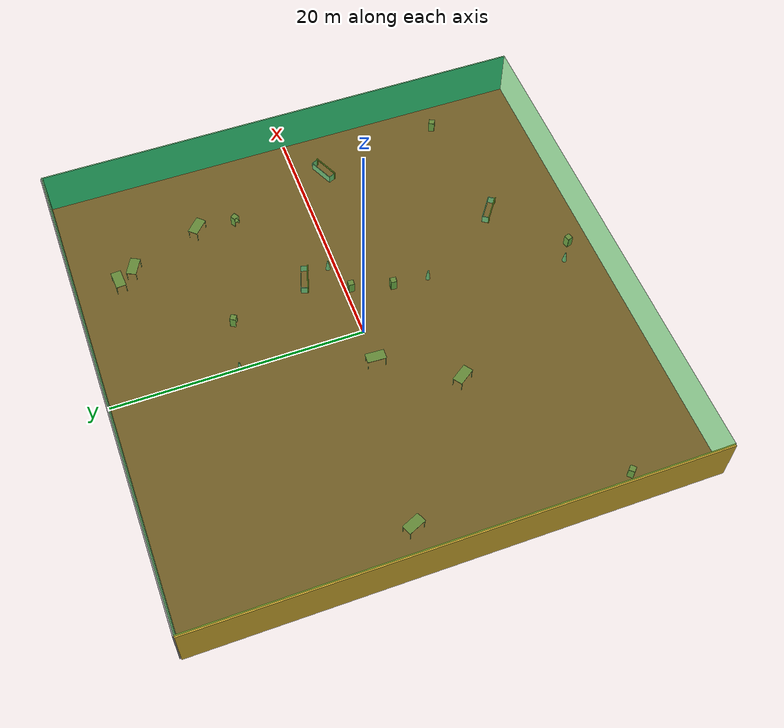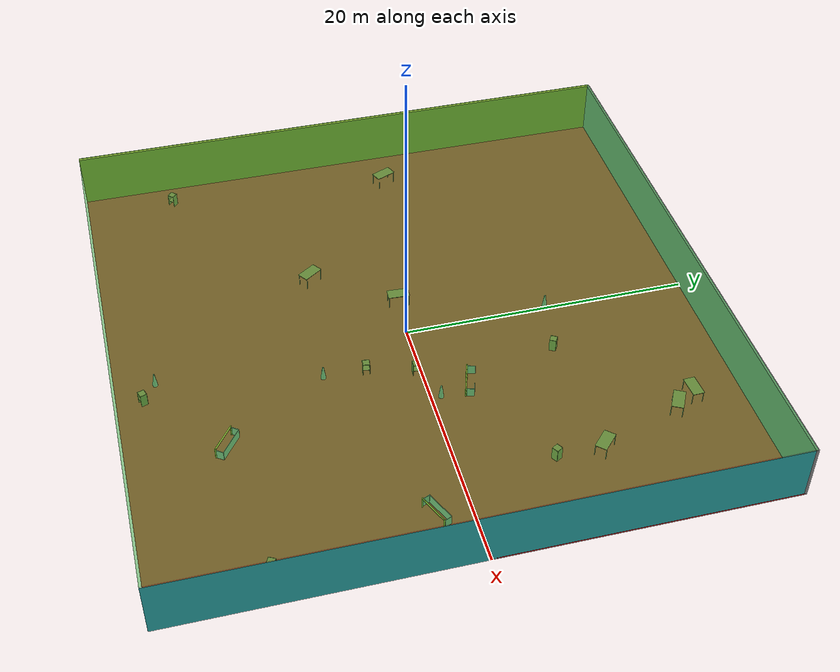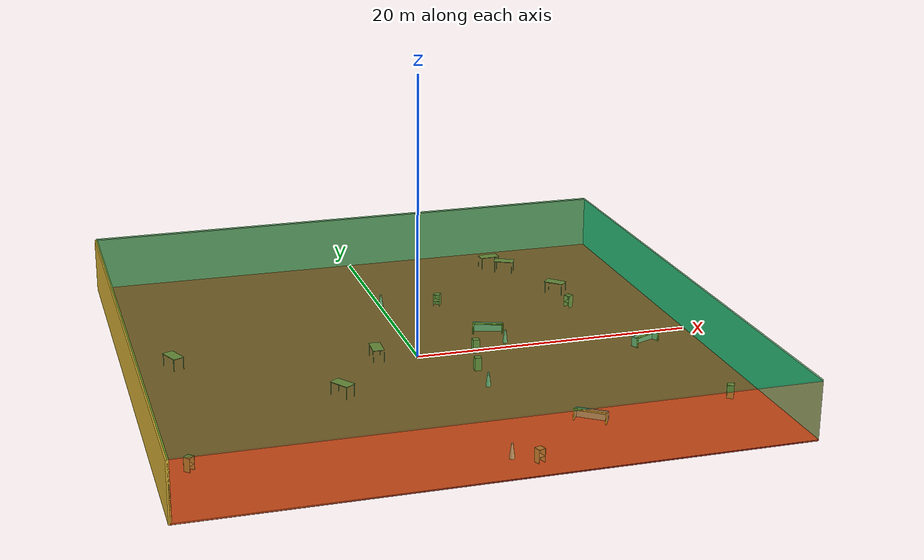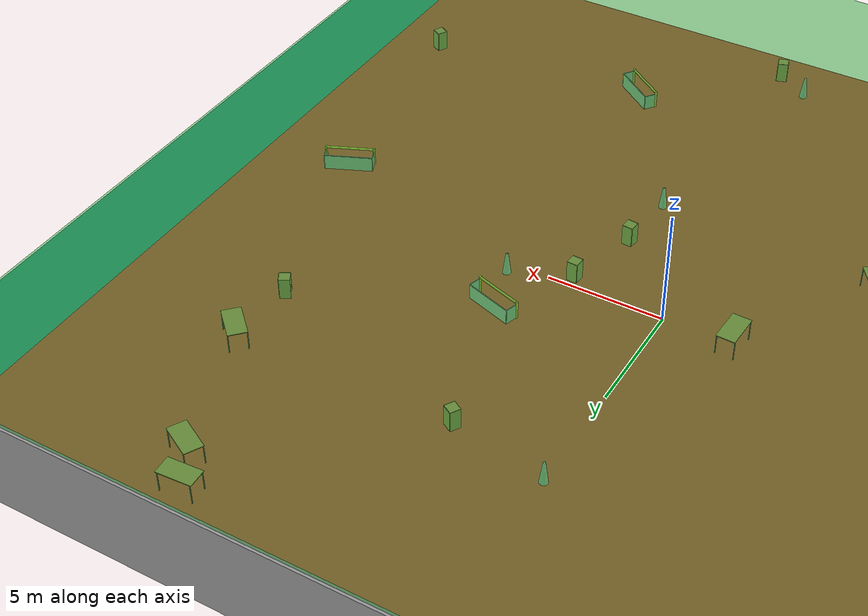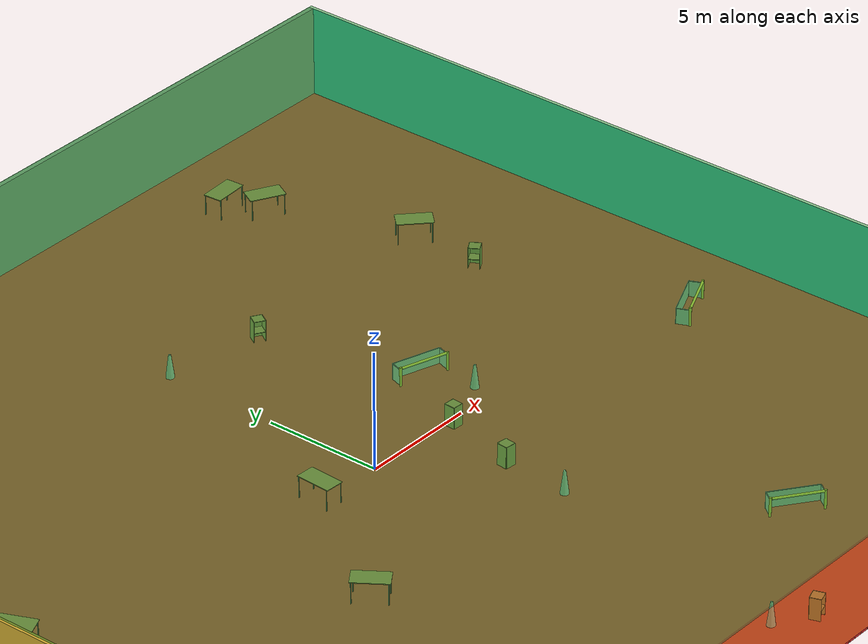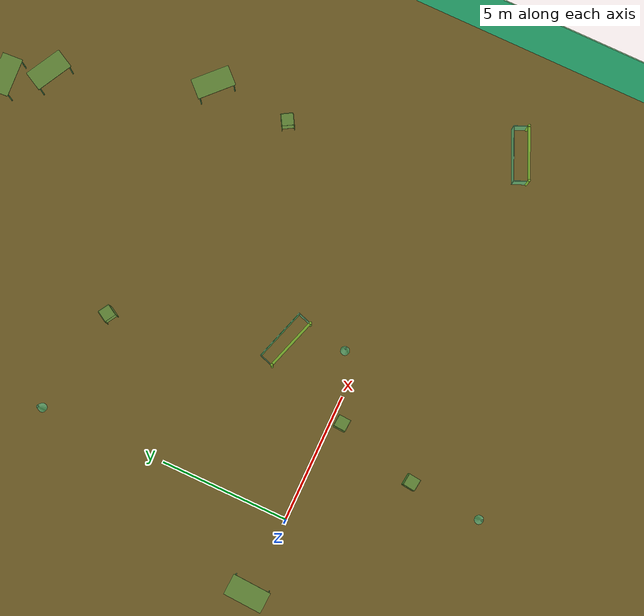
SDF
<sdf version="1.4">
 <world name="default">
  <physics type="ode">
   <max_step_size>0.001</max_step_size>
   <real_time_factor>1</real_time_factor>
   <real_time_update_rate>1000</real_time_update_rate>
   <gravity>0 0 -9.8</gravity>
  </physics>
  <scene><ambient>0.4 0.4 0.4 1</ambient><background>0.7 0.7 0.7 1</background><shadows>1</shadows></scene>
  <model name="Surrounding">
   <static>1</static>
   <link name="Ceiling">
    <collision name="Ceiling_Collision"><geometry><box><size>40 40 0.1</size></box></geometry></collision>
    <visual name="Ceiling_Visual">
     <geometry><box><size>40 40 0.1</size></box></geometry>
     <material>
      <script><uri>file://media/materials/scripts/gazebo.material</uri><name>Gazebo/GreenTransparent</name></script>
     </material>
    </visual>
    <pose>0 0 4.05 0 0 0</pose>
   </link>
   <link name="Wall_South">
    <collision name="Wall_South_Collision">
     <geometry><box><size>40 0 4</size></box></geometry>
     <pose>0 0 2 0 -0 0</pose>
    </collision>
    <visual name="Wall_South_Visual">
     <pose>0 0 2 0 -0 0</pose>
     <geometry><box><size>40 0 4</size></box></geometry>
     <material>
      <script>
       <uri>file://media/materials/scripts/gazebo.material</uri>
       <name>Gazebo/OrangeTransparent</name>
      </script>
     </material>
    </visual>
    <velocity_decay><linear>0</linear><angular>0</angular></velocity_decay>
    <pose>0 -20 0 0 -0 0</pose>
   </link>
   <link name="Wall_East">
    <collision name="Wall_21_Collision">
     <geometry><box><size>40 0 4</size></box></geometry>
     <pose>0 0 2 0 -0 0</pose>
    </collision>
    <visual name="Wall_21_Visual">
     <pose>0 0 2 0 -0 0</pose>
     <geometry><box><size>40 0 4</size></box></geometry>
     <material>
      <script><uri>file://media/materials/scripts/gazebo.material</uri><name>Gazebo/TurquoiseGlow</name></script>
     </material>
    </visual>
    <velocity_decay><linear>0</linear><angular>0</angular></velocity_decay>
    <pose>20 0 0 0 -0 1.5708</pose>
   </link>
   <link name="Wall_North">
    <collision name="Wall_22_Collision">
     <geometry><box><size>40 0.2 4</size></box></geometry>
     <pose>0 0 2 0 -0 0</pose>
    </collision>
    <visual name="Wall_22_Visual">
     <pose>0 0 2 0 -0 0</pose>
     <geometry><box><size>40 0.2 4</size></box></geometry>
     <material>
      <script><uri>file://media/materials/scripts/gazebo.material</uri><name>Gazebo/GreyGradientSky</name></script>
     </material>
    </visual>
    <velocity_decay><linear>0</linear><angular>0</angular></velocity_decay>
    <pose>0 20 0 0 -0 0</pose>
   </link>
   <link name="Wall_West">
    <collision name="Wall_23_Collision">
     <geometry><box><size>40 0.2 4</size></box></geometry>
     <pose>0 0 2 0 -0 0</pose>
    </collision>
    <visual name="Wall_23_Visual">
     <pose>0 0 2 0 -0 0</pose>
     <geometry><box><size>40 0.2 4</size></box></geometry>
     <material>
      <script><uri>file://media/materials/scripts/gazebo.material</uri><name>Gazebo/Gold</name></script>
     </material>
    </visual>
    <velocity_decay><linear>0</linear><angular>0</angular></velocity_decay>
    <pose>-20 0 0 0 0 -1.5708</pose>
   </link>
   <link name="Ground_link">
    <collision name="collision">
     <pose>0 0 .05 0 -0 0</pose>
     <geometry><box><size>40 40 0.1</size></box></geometry>
    </collision>
    <visual name="visual">
     <pose>0 0 .05 0 -0 0</pose>
     <geometry><box><size>40 40 0.1</size></box></geometry>
     <material>
      <script><uri>file://media/materials/scripts/gazebo.material</uri><name>Gazebo/Red</name></script>
     </material>
    </visual>
   </link>
   <static>1</static>
  </model>
  <spherical_coordinates>
   <surface_model>EARTH_WGS84</surface_model>
   <latitude_deg>0</latitude_deg>
   <longitude_deg>0</longitude_deg>
   <elevation>0</elevation>
   <heading_deg>0</heading_deg>
  </spherical_coordinates>
  <light name="lightball_0" type="diffuse">
   <diffuse>0.8 0.8 0.8 1</diffuse>
   <specular>0.2 0.2 0.2 1</specular>
   <attenuation>
    <range>100</range>
    <constant>0.7</constant>
    <linear>0.01</linear>
    <quadratic>0.001</quadratic>
   </attenuation>
   <direction>-0.5 0.1 -0.9</direction>
   <pose>-9.80490602808 5.82372729567 2.06492096881 0 0 0</pose>
  </light>
  <light name="lightball_1" type="diffuse">
   <diffuse>0.8 0.8 0.8 1</diffuse>
   <specular>0.2 0.2 0.2 1</specular>
   <attenuation>
    <range>100</range>
    <constant>0.7</constant>
    <linear>0.01</linear>
    <quadratic>0.001</quadratic>
   </attenuation>
   <direction>-0.5 0.1 -0.9</direction>
   <pose>-2.01888185539 -4.77017316771 3.15503791331 0 0 0</pose>
  </light>
  <light name="lightball_2" type="diffuse">
   <diffuse>0.8 0.8 0.8 1</diffuse>
   <specular>0.2 0.2 0.2 1</specular>
   <attenuation>
    <range>100</range>
    <constant>0.7</constant>
    <linear>0.01</linear>
    <quadratic>0.001</quadratic>
   </attenuation>
   <direction>-0.5 0.1 -0.9</direction>
   <pose>-15.2214873196 -5.17329986641 2.18267385302 0 0 0</pose>
  </light>
  <light name="lightball_3" type="diffuse">
   <diffuse>0.8 0.8 0.8 1</diffuse>
   <specular>0.2 0.2 0.2 1</specular>
   <attenuation>
    <range>100</range>
    <constant>0.7</constant>
    <linear>0.01</linear>
    <quadratic>0.001</quadratic>
   </attenuation>
   <direction>-0.5 0.1 -0.9</direction>
   <pose>-1.12811884377 -7.40969382632 0.964867075429 0 0 0</pose>
  </light>
  <light name="lightball_4" type="diffuse">
   <diffuse>0.8 0.8 0.8 1</diffuse>
   <specular>0.2 0.2 0.2 1</specular>
   <attenuation>
    <range>100</range>
    <constant>0.7</constant>
    <linear>0.01</linear>
    <quadratic>0.001</quadratic>
   </attenuation>
   <direction>-0.5 0.1 -0.9</direction>
   <pose>3.21306455183 13.5289376362 1.79462080715 0 0 0</pose>
  </light>
  <light name="lightball_5" type="diffuse">
   <diffuse>0.8 0.8 0.8 1</diffuse>
   <specular>0.2 0.2 0.2 1</specular>
   <attenuation>
    <range>100</range>
    <constant>0.7</constant>
    <linear>0.01</linear>
    <quadratic>0.001</quadratic>
   </attenuation>
   <direction>-0.5 0.1 -0.9</direction>
   <pose>-19.3666615617 -7.07678141043 3.73111968586 0 0 0</pose>
  </light>
  <light name="lightball_6" type="diffuse">
   <diffuse>0.8 0.8 0.8 1</diffuse>
   <specular>0.2 0.2 0.2 1</specular>
   <attenuation>
    <range>100</range>
    <constant>0.7</constant>
    <linear>0.01</linear>
    <quadratic>0.001</quadratic>
   </attenuation>
   <direction>-0.5 0.1 -0.9</direction>
   <pose>-4.48003279024 -6.39715322785 1.68911430239 0 0 0</pose>
  </light>
  <light name="lightball_7" type="diffuse">
   <diffuse>0.8 0.8 0.8 1</diffuse>
   <specular>0.2 0.2 0.2 1</specular>
   <attenuation>
    <range>100</range>
    <constant>0.7</constant>
    <linear>0.01</linear>
    <quadratic>0.001</quadratic>
   </attenuation>
   <direction>-0.5 0.1 -0.9</direction>
   <pose>-7.61882759619 17.0998759724 2.00240740158 0 0 0</pose>
  </light>
  <light name="lightball_8" type="diffuse">
   <diffuse>0.8 0.8 0.8 1</diffuse>
   <specular>0.2 0.2 0.2 1</specular>
   <attenuation>
    <range>100</range>
    <constant>0.7</constant>
    <linear>0.01</linear>
    <quadratic>0.001</quadratic>
   </attenuation>
   <direction>-0.5 0.1 -0.9</direction>
   <pose>-18.1534653027 19.109842295 2.17439159259 0 0 0</pose>
  </light>
  <light name="lightball_9" type="diffuse">
   <diffuse>0.8 0.8 0.8 1</diffuse>
   <specular>0.2 0.2 0.2 1</specular>
   <attenuation>
    <range>100</range>
    <constant>0.7</constant>
    <linear>0.01</linear>
    <quadratic>0.001</quadratic>
   </attenuation>
   <direction>-0.5 0.1 -0.9</direction>
   <pose>-13.7447407237 -9.07971783632 2.07897819746 0 0 0</pose>
  </light>
  <light name="lightball_10" type="diffuse">
   <diffuse>0.8 0.8 0.8 1</diffuse>
   <specular>0.2 0.2 0.2 1</specular>
   <attenuation>
    <range>100</range>
    <constant>0.7</constant>
    <linear>0.01</linear>
    <quadratic>0.001</quadratic>
   </attenuation>
   <direction>-0.5 0.1 -0.9</direction>
   <pose>-18.4340208001 7.34903572151 0.65388903519 0 0 0</pose>
  </light>
  <light name="lightball_11" type="diffuse">
   <diffuse>0.8 0.8 0.8 1</diffuse>
   <specular>0.2 0.2 0.2 1</specular>
   <attenuation>
    <range>100</range>
    <constant>0.7</constant>
    <linear>0.01</linear>
    <quadratic>0.001</quadratic>
   </attenuation>
   <direction>-0.5 0.1 -0.9</direction>
   <pose>-12.2667946502 16.8492992861 2.02735536072 0 0 0</pose>
  </light>
  <light name="lightball_12" type="diffuse">
   <diffuse>0.8 0.8 0.8 1</diffuse>
   <specular>0.2 0.2 0.2 1</specular>
   <attenuation>
    <range>100</range>
    <constant>0.7</constant>
    <linear>0.01</linear>
    <quadratic>0.001</quadratic>
   </attenuation>
   <direction>-0.5 0.1 -0.9</direction>
   <pose>-3.88795519395 2.89870700349 3.62589171454 0 0 0</pose>
  </light>
  <light name="lightball_13" type="diffuse">
   <diffuse>0.8 0.8 0.8 1</diffuse>
   <specular>0.2 0.2 0.2 1</specular>
   <attenuation>
    <range>100</range>
    <constant>0.7</constant>
    <linear>0.01</linear>
    <quadratic>0.001</quadratic>
   </attenuation>
   <direction>-0.5 0.1 -0.9</direction>
   <pose>-8.47589485676 1.65493306488 3.00594665771 0 0 0</pose>
  </light>
  <include><uri>model://cabinet</uri><pose>-17.9880831914 -13.677325904 0 0 0 2.36942795773</pose></include>
  <include><uri>model://table</uri><pose>-16.668603472 2.40774677194 0 0 0 1.97814144481</pose></include>
  <include><uri>model://table</uri><pose>-6.6680751361 -5.37179781177 0 0 0 2.1774143376</pose></include>
  <include><uri>model://table</uri><pose>-2.94468554058 0.145791172089 0 0 0 1.52364536465</pose></include>
  <include>
   <uri>model://construction_cone</uri>
   <pose>0.942333072092 -17.3079855699 0 0 0 1.30781571998</pose>
  </include>
  <include>
   <uri>model://construction_cone</uri>
   <pose>-0.0717081946196 9.94225227817 0 0 0 2.04079092534</pose>
  </include>
  <include><uri>model://cabinet</uri><pose>2.37983407187 -18.2467970423 0 0 0 1.88872916054</pose></include>
  <include>
   <uri>model://construction_cone</uri>
   <pose>3.0149351484 -6.44747846844 0 0 0 0.337717596319</pose>
  </include>
  <include><uri>model://cabinet</uri><pose>3.19694484263 -3.5847607486 0 0 0 3.03151027089</pose></include>
  <include><uri>model://cabinet</uri><pose>4.08038256948 -0.383340090063 0 0 0 3.08040691871</pose></include>
  <include><uri>model://cabinet</uri><pose>4.07346156934 9.1597270555 0 0 0 1.037192533</pose></include>
  <include>
   <uri>model://robocup_3Dsim_goal</uri>
   <pose>7.36221054715 -13.7492653789 0 0 0 0.939892759957</pose>
  </include>
  <include>
   <uri>model://construction_cone</uri>
   <pose>6.59659743795 0.64614702351 0 0 0 1.02333083441</pose>
  </include>
  <include>
   <uri>model://robocup_3Dsim_goal</uri>
   <pose>5.92246657752 2.54010876984 0 0 0 1.26301723374</pose>
  </include>
  <include><uri>model://table</uri><pose>10.5727264582 16.5464294477 0 0 0 0.0641185599771</pose></include>
  <include><uri>model://cabinet</uri><pose>13.4807916387 6.22506500614 0 0 0 0.534972783776</pose></include>
  <include><uri>model://table</uri><pose>13.5979730109 9.35101384649 0 0 0 2.38141689717</pose></include>
  <include><uri>model://table</uri><pose>11.4194116877 15.1466090501 0 0 0 2.65469728407</pose></include>
  <include>
   <uri>model://robocup_3Dsim_goal</uri>
   <pose>16.1709950522 -2.48141568711 0 0 0 1.98754918319</pose>
  </include>
  <include><uri>model://cabinet</uri><pose>17.6513293684 -12.5560453876 0 0 0 2.64955866331</pose></include>
 </world>
</sdf>

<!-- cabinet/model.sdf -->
<sdf version="1.5">
  <model name="cabinet">
    <static>true</static>
    <link name="cabinet_bottom_plate">
      <inertial>
        <pose>0 0 -1 0 0 0</pose>
        <inertia>
          <ixx>2.050000</ixx>
          <ixy>0</ixy>
          <ixz>0</ixz>
          <iyy>2.050000</iyy>
          <iyz>0</iyz>
          <izz>2.050000</izz>
        </inertia>
        <mass>25.000000</mass>
      </inertial>
      <collision name="cabinet_bottom_plate_geom">
        <pose>0 0 0.010000 0 0 0</pose>
        <geometry>
          <box>
            <size>0.450000 0.450000 0.020000</size>
          </box>
        </geometry>
      </collision>
      <visual name="cabinet_bottom_plate_geom_visual">
        <pose>0 0 0.010000 0 0 0</pose>
        <geometry>
          <box>
            <size>0.450000 0.450000 0.020000</size>
          </box>
        </geometry>
        <material>
          <script>
            <uri>model://media/materials/scripts/gazebo.material</uri>
            <name>Gazebo/Wood</name>
          </script>
        </material>
      </visual>
      <collision name="cabinet_bottom_plate_geom_cabinet_back_plate">
        <pose>0.235000 0 0.510000 0 0 0</pose>
        <geometry>
          <box>
            <size>0.020000 0.450000 1.020000</size>
          </box>
        </geometry>
      </collision>
      <visual name="cabinet_bottom_plate_geom_cabinet_back_plate_visual">
        <pose>0.235000 0 0.510000 0 0 0</pose>
        <geometry>
          <box>
            <size>0.020000 0.450000 1.020000</size>
          </box>
        </geometry>
        <material>
          <script>
            <uri>model://media/materials/scripts/gazebo.material</uri>
            <name>Gazebo/Wood</name>
          </script>
        </material>
      </visual>
      <collision name="cabinet_bottom_plate_geom_cabinet_left_plate">
        <pose>0 0.235000 0.510000 0 0 0</pose>
        <geometry>
          <box>
            <size>0.450000 0.020000 1.020000</size>
          </box>
        </geometry>
      </collision>
      <visual name="cabinet_bottom_plate_geom_cabinet_left_plate_visual">
        <pose>0 0.235000 0.510000 0 0 0</pose>
        <geometry>
          <box>
            <size>0.450000 0.020000 1.020000</size>
          </box>
        </geometry>
        <material>
          <script>
            <uri>model://media/materials/scripts/gazebo.material</uri>
            <name>Gazebo/Wood</name>
          </script>
        </material>
      </visual>
      <collision name="cabinet_bottom_plate_geom_cabinet_middle_plate">
        <pose>0 0 0.510000 0 0 0</pose>
        <geometry>
          <box>
            <size>0.450000 0.450000 0.020000</size>
          </box>
        </geometry>
      </collision>
      <visual name="cabinet_bottom_plate_geom_cabinet_middle_plate_visual">
        <pose>0 0 0.510000 0 0 0</pose>
        <geometry>
          <box>
            <size>0.450000 0.450000 0.020000</size>
          </box>
        </geometry>
        <material>
          <script>
            <uri>model://media/materials/scripts/gazebo.material</uri>
            <name>Gazebo/Wood</name>
          </script>
        </material>
      </visual>
      <collision name="cabinet_bottom_plate_geom_cabinet_right_plate">
        <pose>0 -0.235000 0.510000 0 0 0</pose>
        <geometry>
          <box>
            <size>0.450000 0.020000 1.020000</size>
          </box>
        </geometry>
      </collision>
      <visual name="cabinet_bottom_plate_geom_cabinet_right_plate_visual">
        <pose>0 -0.235000 0.510000 0 0 0</pose>
        <geometry>
          <box>
            <size>0.450000 0.020000 1.020000</size>
          </box>
        </geometry>
        <material>
          <script>
            <uri>model://media/materials/scripts/gazebo.material</uri>
            <name>Gazebo/Wood</name>
          </script>
        </material>
      </visual>
      <collision name="cabinet_bottom_plate_geom_cabinet_top_plate">
        <pose>0 0 1.010000 0 0 0</pose>
        <geometry>
          <box>
            <size>0.450000 0.450000 0.020000</size>
          </box>
        </geometry>
      </collision>
      <visual name="cabinet_bottom_plate_geom_cabinet_top_plate_visual">
        <pose>0 0 1.010000 0 0 0</pose>
        <geometry>
          <box>
            <size>0.450000 0.450000 0.020000</size>
          </box>
        </geometry>
        <material>
          <script>
            <uri>model://media/materials/scripts/gazebo.material</uri>
            <name>Gazebo/Wood</name>
          </script>
        </material>
      </visual>
    </link>
  </model>
</sdf>

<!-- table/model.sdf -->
<sdf version="1.5">
  <model name="table">
    <static>true</static>
    <link name="link">
      <collision name="surface">
        <pose>0 0 1.0 0 0 0</pose>
        <geometry>
          <box>
            <size>1.5 0.8 0.03</size>
          </box>
        </geometry>
        <surface>
          <friction>
            <ode>
              <mu>0.6</mu>
              <mu2>0.6</mu2>
            </ode>
          </friction>
        </surface>
      </collision>
      <visual name="visual1">
        <pose>0 0 1.0 0 0 0</pose>
        <geometry>
          <box>
            <size>1.5 0.8 0.03</size>
          </box>
        </geometry>
        <material>
          <script>
            <uri>model://media/materials/scripts/gazebo.material</uri>
            <name>Gazebo/Wood</name>
          </script>
        </material>
      </visual>
      <collision name="front_left_leg">
        <pose>0.68 0.38 0.5 0 0 0</pose>
        <geometry>
          <cylinder>
            <radius>0.02</radius>
            <length>1.0</length>
          </cylinder>
        </geometry>
      </collision>
      <visual name="front_left_leg">
        <pose>0.68 0.38 0.5 0 0 0</pose>
        <geometry>
          <cylinder>
            <radius>0.02</radius>
            <length>1.0</length>
          </cylinder>
        </geometry>
        <material>
          <script>
            <uri>model://media/materials/scripts/gazebo.material</uri>
            <name>Gazebo/Grey</name>
          </script>
        </material>
      </visual>
      <collision name="front_right_leg">
        <pose>0.68 -0.38 0.5 0 0 0</pose>
        <geometry>
          <cylinder>
            <radius>0.02</radius>
            <length>1.0</length>
          </cylinder>
        </geometry>
      </collision>
      <visual name="front_right_leg">
        <pose>0.68 -0.38 0.5 0 0 0</pose>
        <geometry>
          <cylinder>
            <radius>0.02</radius>
            <length>1.0</length>
          </cylinder>
        </geometry>
        <material>
          <script>
            <uri>model://media/materials/scripts/gazebo.material</uri>
            <name>Gazebo/Grey</name>
          </script>
        </material>
      </visual>
      <collision name="back_right_leg">
        <pose>-0.68 -0.38 0.5 0 0 0</pose>
        <geometry>
          <cylinder>
            <radius>0.02</radius>
            <length>1.0</length>
          </cylinder>
        </geometry>
      </collision>
      <visual name="back_right_leg">
        <pose>-0.68 -0.38 0.5 0 0 0</pose>
        <geometry>
          <cylinder>
            <radius>0.02</radius>
            <length>1.0</length>
          </cylinder>
        </geometry>
        <material>
          <script>
            <uri>model://media/materials/scripts/gazebo.material</uri>
            <name>Gazebo/Grey</name>
          </script>
        </material>
      </visual>
      <collision name="back_left_leg">
        <pose>-0.68 0.38 0.5 0 0 0</pose>
        <geometry>
          <cylinder>
            <radius>0.02</radius>
            <length>1.0</length>
          </cylinder>
        </geometry>
      </collision>
      <visual name="back_left_leg">
        <pose>-0.68 0.38 0.5 0 0 0</pose>
        <geometry>
          <cylinder>
            <radius>0.02</radius>
            <length>1.0</length>
          </cylinder>
        </geometry>
        <material>
          <script>
            <uri>model://media/materials/scripts/gazebo.material</uri>
            <name>Gazebo/Grey</name>
          </script>
        </material>
      </visual>
    </link>
  </model>
</sdf>

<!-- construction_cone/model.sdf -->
<sdf version="1.5">
  <model name="Construction Cone">
    <link name="link">
      <collision name="collision">
        <geometry>
          <mesh>
            <scale>10 10 10</scale>
            <uri>file://isr-testbed/construction_cone/meshes/construction_cone.dae</uri>
          </mesh>
        </geometry>
      </collision>
      <visual name="visual">
        <geometry>
          <mesh>
            <scale>10 10 10</scale>
            <uri>file://isr-testbed/construction_cone/meshes/construction_cone.dae</uri>
          </mesh>
        </geometry>
      </visual>
    </link>
  </model>
</sdf>

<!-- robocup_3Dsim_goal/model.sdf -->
<sdf version="1.5">
  <model name="robocup_3d_goal">
    <static>true</static>
    <link name="left_post">
      <pose>0 1.05 0.45 0 0 0</pose>
      <collision name="collision">
        <geometry>
          <cylinder>
            <radius>0.05</radius>
            <length>0.9</length>
          </cylinder>
        </geometry>
      </collision>
      <visual name="visual">
        <geometry>
          <cylinder>
            <radius>0.05</radius>
            <length>0.9</length>
          </cylinder>
        </geometry>
        <material>
          <script>
            <uri>file://media/materials/scripts/gazebo.material</uri>
            <name>Gazebo/ZincYellow</name>
          </script>
        </material>
      </visual>
    </link>
    <link name="left_support_horiz_lower">
      <pose>0.30 1.05 0.01 0 0 0</pose>
      <collision name="collision">
        <geometry>
          <box>
            <size>0.50 0.02 0.02</size>
          </box>
        </geometry>
      </collision>
      <visual name="visual">
        <geometry>
          <box>
            <size>0.50 0.02 0.02</size>
          </box>
        </geometry>
        <material>
          <script>
            <uri>file://media/materials/scripts/gazebo.material</uri>
            <name>Gazebo/White</name>
          </script>
        </material>
      </visual>
    </link>
    <link name="left_support_horiz_upper">
      <pose>0.30 1.05 0.79 0 0 0</pose>
      <collision name="collision">
        <geometry>
          <box>
            <size>0.50 0.02 0.02</size>
          </box>
        </geometry>
      </collision>
      <visual name="visual">
        <geometry>
          <box>
            <size>0.50 0.02 0.02</size>
          </box>
        </geometry>
        <material>
          <script>
            <uri>file://media/materials/scripts/gazebo.material</uri>
            <name>Gazebo/White</name>
          </script>
        </material>
      </visual>
    </link>
    <link name="left_support_vertical">
      <pose>0.56 1.05 0.4 0 1.5708 0</pose>
      <collision name="collision">
        <geometry>
          <box>
            <size>0.80 0.02 0.02</size>
          </box>
        </geometry>
      </collision>
      <visual name="visual">
        <geometry>
          <box>
            <size>0.80 0.02 0.02</size>
          </box>
        </geometry>
        <material>
          <script>
            <uri>file://media/materials/scripts/gazebo.material</uri>
            <name>Gazebo/White</name>
          </script>
        </material>
      </visual>
    </link>
    <link name="right_support_horiz_lower">
      <pose>0.30 -1.05 0.01 0 0 0</pose>
      <collision name="collision">
        <geometry>
          <box>
            <size>0.50 0.02 0.02</size>
          </box>
        </geometry>
      </collision>
      <visual name="visual">
        <geometry>
          <box>
            <size>0.50 0.02 0.02</size>
          </box>
        </geometry>
        <material>
          <script>
            <uri>file://media/materials/scripts/gazebo.material</uri>
            <name>Gazebo/White</name>
          </script>
        </material>
      </visual>
    </link>
    <link name="right_support_horiz_upper">
      <pose>0.30 -1.05 0.79 0 0 0</pose>
      <collision name="collision">
        <geometry>
          <box>
            <size>0.50 0.02 0.02</size>
          </box>
        </geometry>
      </collision>
      <visual name="visual">
        <geometry>
          <box>
            <size>0.50 0.02 0.02</size>
          </box>
        </geometry>
        <material>
          <script>
            <uri>file://media/materials/scripts/gazebo.material</uri>
            <name>Gazebo/White</name>
          </script>
        </material>
      </visual>
    </link>
    <link name="right_support_vertical">
      <pose>0.56 -1.05 0.4 0 1.5708 0</pose>
      <collision name="collision">
        <geometry>
          <box>
            <size>0.80 0.02 0.02</size>
          </box>
        </geometry>
      </collision>
      <visual name="visual">
        <geometry>
          <box>
            <size>0.80 0.02 0.02</size>
          </box>
        </geometry>
        <material>
          <script>
            <uri>file://media/materials/scripts/gazebo.material</uri>
            <name>Gazebo/White</name>
          </script>
        </material>
      </visual>
    </link>
    <link name="center_support_horiz_lower">
      <pose>0.56 0 0.01 0 1.5708 0</pose>
      <collision name="collision">
        <geometry>
          <box>
            <size>0.02 2.08 0.02</size>
          </box>
        </geometry>
      </collision>
      <visual name="visual">
        <geometry>
          <box>
            <size>0.02 2.08 0.02</size>
          </box>
        </geometry>
        <material>
          <script>
            <uri>file://media/materials/scripts/gazebo.material</uri>
            <name>Gazebo/White</name>
          </script>
        </material>
      </visual>
    </link>
    <link name="center_support_horiz_upper">
      <pose>0.56 0 0.79 0 1.5708 0</pose>
      <collision name="collision">
        <geometry>
          <box>
            <size>0.02 2.08 0.02</size>
          </box>
        </geometry>
      </collision>
      <visual name="visual">
        <geometry>
          <box>
            <size>0.02 2.08 0.02</size>
          </box>
        </geometry>
        <material>
          <script>
            <uri>file://media/materials/scripts/gazebo.material</uri>
            <name>Gazebo/White</name>
          </script>
        </material>
      </visual>
    </link>
    <link name="right_post">
      <pose>0 -1.05 0.45 0 0 0</pose>
      <collision name="collision">
        <geometry>
          <cylinder>
            <radius>0.05</radius>
            <length>0.9</length>
          </cylinder>
        </geometry>
      </collision>
      <visual name="visual">
        <geometry>
          <cylinder>
            <radius>0.05</radius>
            <length>0.9</length>
          </cylinder>
        </geometry>
        <material>
          <script>
            <uri>file://media/materials/scripts/gazebo.material</uri>
            <name>Gazebo/ZincYellow</name>
          </script>
        </material>
      </visual>
    </link>
    <link name="crossbar">
      <pose>0 0 0.85 1.57 1.57 0</pose>
      <collision name="collision">
        <geometry>
          <cylinder>
            <radius>0.05</radius>
            <length>2.0</length>
          </cylinder>
        </geometry>
      </collision>
      <visual name="visual">
        <geometry>
          <cylinder>
            <radius>0.05</radius>
            <length>2.0</length>
          </cylinder>
        </geometry>
        <material>
          <script>
            <uri>file://media/materials/scripts/gazebo.material</uri>
            <name>Gazebo/ZincYellow</name>
          </script>
        </material>
      </visual>
    </link>
    <link name="center_net">
      <pose>0.56 0 0.40 0 0 0</pose>
      <collision name="collision">
        <geometry>
          <box>
            <size>0.01 2.1 0.80</size>
          </box>
        </geometry>
      </collision>
      <visual name="visual">
        <geometry>
          <box>
            <size>0.01 2.1 0.80</size>
          </box>
        </geometry>
        <material>
          <script>
            <uri>model://../model_source/models/robocup09_spl_field/materials/scripts/</uri>
            <uri>model://../model_source/models/robocup09_spl_field/materials/textures/</uri>
            <name>RoboCup/Net</name>
          </script>
        </material>
      </visual>
    </link>
    <link name="left_net">
      <pose>0.30 1.05 0.40 0 0 0</pose>
      <collision name="collision">
        <geometry>
          <box>
            <size>0.50 0.01 0.76</size>
          </box>
        </geometry>
      </collision>
      <visual name="visual">
        <geometry>
          <box>
            <size>0.50 0.01 0.76</size>
          </box>
        </geometry>
        <material>
          <script>
            <uri>model://../model_source/models/robocup09_spl_field/materials/scripts/</uri>
            <uri>model://../model_source/models/robocup09_spl_field/materials/textures/</uri>
            <name>RoboCup/Net</name>
          </script>
        </material>
      </visual>
    </link>
    <link name="right_net">
      <pose>0.30 -1.05 0.40 0 0 0</pose>
      <collision name="collision">
        <geometry>
          <box>
            <size>0.50 0.01 0.76</size>
          </box>
        </geometry>
      </collision>
      <visual name="visual">
        <geometry>
          <box>
            <size>0.50 0.01 0.76</size>
          </box>
        </geometry>
        <material>
          <script>
            <uri>model://../model_source/models/robocup09_spl_field/materials/scripts/</uri>
            <uri>model://../model_source/models/robocup09_spl_field/materials/textures/</uri>
            <name>RoboCup/Net</name>
          </script>
        </material>
      </visual>
    </link>
  </model>
</sdf>
